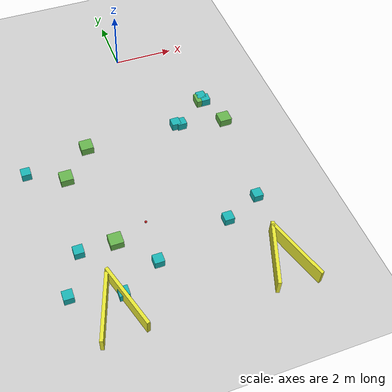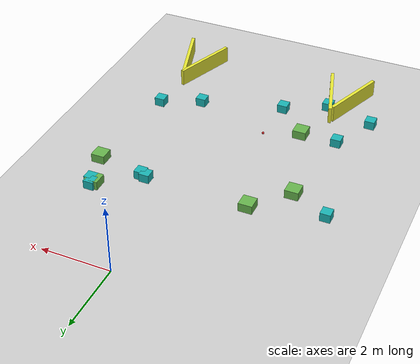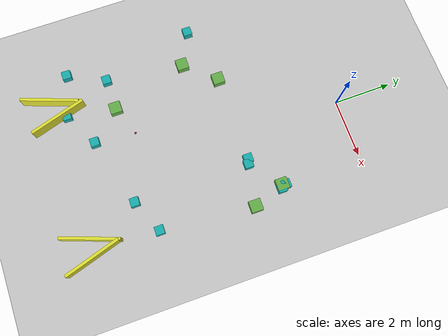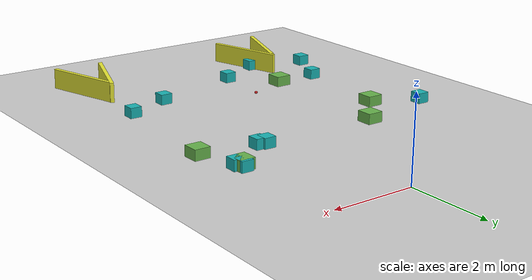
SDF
<sdf version="1.7">
 <world name="default">
  <model name="ground_plane">
   <static>1</static>
   <link name="link">
    <collision name="collision">
     <geometry><plane><normal>0 0 1</normal><size>100 100</size></plane></geometry>
     <surface><friction><ode><mu>100</mu><mu2>50</mu2></ode></friction></surface>
    </collision>
    <visual name="visual">
     <cast_shadows>0</cast_shadows>
     <geometry><plane><normal>0 0 1</normal><size>100 100</size></plane></geometry>
     <material>
      <script><uri>file://media/materials/scripts/gazebo.material</uri><name>Gazebo/Grey</name></script>
     </material>
    </visual>
   </link>
  </model>
  <model name="fl4sr_real_arena_8_target">
   <model name="target_ball_6">
    <link name="link">
     <pose>0 0 0.0375 0 -0 0</pose>
     <inertial>
      <mass>0.1467</mass>
      <inertia>
       <ixx>8.25187e-05</ixx>
       <ixy>0</ixy>
       <ixz>0</ixz>
       <iyy>8.25187e-05</iyy>
       <iyz>0</iyz>
       <izz>8.25187e-05</izz>
      </inertia>
     </inertial>
     <velocity_decay><linear>0</linear><angular>0.005</angular></velocity_decay>
     <visual name="visual">
      <geometry><sphere><radius>0.0375</radius></sphere></geometry>
      <material>
       <script><uri>file://media/materials/scripts/gazebo.material</uri><name>Gazebo/Red</name></script>
       <shader type="pixel"/>
      </material>
     </visual>
     <collision name="collision">
      <geometry><sphere><radius>0.0375</radius></sphere></geometry>
      <surface>
       <friction>
        <ode><mu>1</mu><mu2>1</mu2><fdir1>0 0 0</fdir1><slip1>0</slip1><slip2>0</slip2></ode>
        <torsional>
         <coefficient>1</coefficient>
         <patch_radius>0</patch_radius>
         <surface_radius>0.01</surface_radius>
         <use_patch_radius>0</use_patch_radius>
         <ode><slip>0</slip></ode>
        </torsional>
       </friction>
       <bounce><restitution_coefficient>0</restitution_coefficient><threshold>1e+06</threshold></bounce>
       <contact>
        <collide_without_contact>0</collide_without_contact>
        <collide_without_contact_bitmask>1</collide_without_contact_bitmask>
        <collide_bitmask>1</collide_bitmask>
        <ode>
         <soft_cfm>0</soft_cfm>
         <soft_erp>0.2</soft_erp>
         <kp>100000</kp>
         <kd>100</kd>
         <max_vel>100</max_vel>
         <min_depth>0.001</min_depth>
        </ode>
        <bullet>
         <split_impulse>1</split_impulse>
         <split_impulse_penetration_threshold>-0.01</split_impulse_penetration_threshold>
         <soft_cfm>0</soft_cfm>
         <soft_erp>0.2</soft_erp>
         <kp>100000</kp>
         <kd>100</kd>
        </bullet>
       </contact>
      </surface>
     </collision>
    </link>
    <static>0</static>
    <pose>-2.94744 -7.77192 0 0 -0 0</pose>
   </model>
   <static>0</static>
   <pose>1.69407 0.837481 0 0 -0 0</pose>
  </model>
  <model name="unit_box_0.3_heavy_clone_3">
   <link name="link">
    <inertial>
     <mass>100</mass>
     <inertia><ixx>1.5</ixx><ixy>0</ixy><ixz>0</ixz><iyy>1.5</iyy><iyz>0</iyz><izz>1.5</izz></inertia>
    </inertial>
    <visual name="visual">
     <geometry><box><size>0.3 0.3 0.5</size></box></geometry>
     <material>
      <script><name>Gazebo/Grey</name><uri>file://media/materials/scripts/gazebo.material</uri></script>
      <shader type="pixel"><normal_map>__default__</normal_map></shader>
      <ambient>0.1 0.7 0.7 1</ambient>
      <diffuse>0.7 0.7 0.7 1</diffuse>
      <specular>0.01 0.01 0.01 1</specular>
      <emissive>0 0 0 1</emissive>
     </material>
    </visual>
    <collision name="collision">
     <geometry><box><size>0.3 0.3 0.5</size></box></geometry>
     <surface>
      <friction>
       <ode><mu>1</mu><mu2>1</mu2><fdir1>0 0 0</fdir1><slip1>0</slip1><slip2>0</slip2></ode>
       <torsional>
        <coefficient>1</coefficient>
        <patch_radius>0</patch_radius>
        <surface_radius>0</surface_radius>
        <use_patch_radius>1</use_patch_radius>
        <ode><slip>0</slip></ode>
       </torsional>
      </friction>
      <bounce><restitution_coefficient>0</restitution_coefficient><threshold>1e+06</threshold></bounce>
      <contact>
       <collide_without_contact>0</collide_without_contact>
       <collide_without_contact_bitmask>1</collide_without_contact_bitmask>
       <collide_bitmask>1</collide_bitmask>
       <ode>
        <soft_cfm>0</soft_cfm>
        <soft_erp>0.2</soft_erp>
        <kp>1e+13</kp>
        <kd>1</kd>
        <max_vel>0.01</max_vel>
        <min_depth>0</min_depth>
       </ode>
       <bullet>
        <split_impulse>1</split_impulse>
        <split_impulse_penetration_threshold>-0.01</split_impulse_penetration_threshold>
        <soft_cfm>0</soft_cfm>
        <soft_erp>0.2</soft_erp>
        <kp>1e+13</kp>
        <kd>1</kd>
       </bullet>
      </contact>
     </surface>
    </collision>
   </link>
   <static>1</static>
   <pose>2.13984 -2.73394 0 0 -0 0</pose>
  </model>
  <model name="unit_box_0.3_heavy_clone_4">
   <link name="link">
    <inertial>
     <mass>100</mass>
     <inertia><ixx>1.5</ixx><ixy>0</ixy><ixz>0</ixz><iyy>1.5</iyy><iyz>0</iyz><izz>1.5</izz></inertia>
    </inertial>
    <visual name="visual">
     <geometry><box><size>0.3 0.3 0.5</size></box></geometry>
     <material>
      <script><name>Gazebo/Grey</name><uri>file://media/materials/scripts/gazebo.material</uri></script>
      <shader type="pixel"><normal_map>__default__</normal_map></shader>
      <ambient>0.1 0.7 0.7 1</ambient>
      <diffuse>0.7 0.7 0.7 1</diffuse>
      <specular>0.01 0.01 0.01 1</specular>
      <emissive>0 0 0 1</emissive>
     </material>
    </visual>
    <collision name="collision">
     <geometry><box><size>0.3 0.3 0.5</size></box></geometry>
     <surface>
      <friction>
       <ode><mu>1</mu><mu2>1</mu2><fdir1>0 0 0</fdir1><slip1>0</slip1><slip2>0</slip2></ode>
       <torsional>
        <coefficient>1</coefficient>
        <patch_radius>0</patch_radius>
        <surface_radius>0</surface_radius>
        <use_patch_radius>1</use_patch_radius>
        <ode><slip>0</slip></ode>
       </torsional>
      </friction>
      <bounce><restitution_coefficient>0</restitution_coefficient><threshold>1e+06</threshold></bounce>
      <contact>
       <collide_without_contact>0</collide_without_contact>
       <collide_without_contact_bitmask>1</collide_without_contact_bitmask>
       <collide_bitmask>1</collide_bitmask>
       <ode>
        <soft_cfm>0</soft_cfm>
        <soft_erp>0.2</soft_erp>
        <kp>1e+13</kp>
        <kd>1</kd>
        <max_vel>0.01</max_vel>
        <min_depth>0</min_depth>
       </ode>
       <bullet>
        <split_impulse>1</split_impulse>
        <split_impulse_penetration_threshold>-0.01</split_impulse_penetration_threshold>
        <soft_cfm>0</soft_cfm>
        <soft_erp>0.2</soft_erp>
        <kp>1e+13</kp>
        <kd>1</kd>
       </bullet>
      </contact>
     </surface>
    </collision>
   </link>
   <static>1</static>
   <pose>2.2171 -2.90142 0 0 -0 0</pose>
  </model>
  <model name="unit_box_0.3_heavy_clone_5">
   <link name="link">
    <inertial>
     <mass>100</mass>
     <inertia><ixx>1.5</ixx><ixy>0</ixy><ixz>0</ixz><iyy>1.5</iyy><iyz>0</iyz><izz>1.5</izz></inertia>
    </inertial>
    <visual name="visual">
     <geometry><box><size>0.3 0.3 0.5</size></box></geometry>
     <material>
      <script><name>Gazebo/Grey</name><uri>file://media/materials/scripts/gazebo.material</uri></script>
      <shader type="pixel"><normal_map>__default__</normal_map></shader>
      <ambient>0.1 0.7 0.7 1</ambient>
      <diffuse>0.7 0.7 0.7 1</diffuse>
      <specular>0.01 0.01 0.01 1</specular>
      <emissive>0 0 0 1</emissive>
     </material>
    </visual>
    <collision name="collision">
     <geometry><box><size>0.3 0.3 0.5</size></box></geometry>
     <surface>
      <friction>
       <ode><mu>1</mu><mu2>1</mu2><fdir1>0 0 0</fdir1><slip1>0</slip1><slip2>0</slip2></ode>
       <torsional>
        <coefficient>1</coefficient>
        <patch_radius>0</patch_radius>
        <surface_radius>0</surface_radius>
        <use_patch_radius>1</use_patch_radius>
        <ode><slip>0</slip></ode>
       </torsional>
      </friction>
      <bounce><restitution_coefficient>0</restitution_coefficient><threshold>1e+06</threshold></bounce>
      <contact>
       <collide_without_contact>0</collide_without_contact>
       <collide_without_contact_bitmask>1</collide_without_contact_bitmask>
       <collide_bitmask>1</collide_bitmask>
       <ode>
        <soft_cfm>0</soft_cfm>
        <soft_erp>0.2</soft_erp>
        <kp>1e+13</kp>
        <kd>1</kd>
        <max_vel>0.01</max_vel>
        <min_depth>0</min_depth>
       </ode>
       <bullet>
        <split_impulse>1</split_impulse>
        <split_impulse_penetration_threshold>-0.01</split_impulse_penetration_threshold>
        <soft_cfm>0</soft_cfm>
        <soft_erp>0.2</soft_erp>
        <kp>1e+13</kp>
        <kd>1</kd>
       </bullet>
      </contact>
     </surface>
    </collision>
   </link>
   <static>1</static>
   <pose>1.07636 -3.67231 0 0 -0 0</pose>
  </model>
  <model name="unit_box_0.3_heavy_clone_6">
   <link name="link">
    <inertial>
     <mass>100</mass>
     <inertia><ixx>1.5</ixx><ixy>0</ixy><ixz>0</ixz><iyy>1.5</iyy><iyz>0</iyz><izz>1.5</izz></inertia>
    </inertial>
    <visual name="visual">
     <geometry><box><size>0.3 0.3 0.5</size></box></geometry>
     <material>
      <script><name>Gazebo/Grey</name><uri>file://media/materials/scripts/gazebo.material</uri></script>
      <shader type="pixel"><normal_map>__default__</normal_map></shader>
      <ambient>0.1 0.7 0.7 1</ambient>
      <diffuse>0.7 0.7 0.7 1</diffuse>
      <specular>0.01 0.01 0.01 1</specular>
      <emissive>0 0 0 1</emissive>
     </material>
    </visual>
    <collision name="collision">
     <geometry><box><size>0.3 0.3 0.5</size></box></geometry>
     <surface>
      <friction>
       <ode><mu>1</mu><mu2>1</mu2><fdir1>0 0 0</fdir1><slip1>0</slip1><slip2>0</slip2></ode>
       <torsional>
        <coefficient>1</coefficient>
        <patch_radius>0</patch_radius>
        <surface_radius>0</surface_radius>
        <use_patch_radius>1</use_patch_radius>
        <ode><slip>0</slip></ode>
       </torsional>
      </friction>
      <bounce><restitution_coefficient>0</restitution_coefficient><threshold>1e+06</threshold></bounce>
      <contact>
       <collide_without_contact>0</collide_without_contact>
       <collide_without_contact_bitmask>1</collide_without_contact_bitmask>
       <collide_bitmask>1</collide_bitmask>
       <ode>
        <soft_cfm>0</soft_cfm>
        <soft_erp>0.2</soft_erp>
        <kp>1e+13</kp>
        <kd>1</kd>
        <max_vel>0.01</max_vel>
        <min_depth>0</min_depth>
       </ode>
       <bullet>
        <split_impulse>1</split_impulse>
        <split_impulse_penetration_threshold>-0.01</split_impulse_penetration_threshold>
        <soft_cfm>0</soft_cfm>
        <soft_erp>0.2</soft_erp>
        <kp>1e+13</kp>
        <kd>1</kd>
       </bullet>
      </contact>
     </surface>
    </collision>
   </link>
   <static>1</static>
   <pose>0.896545 -3.61717 0 0 -0 0</pose>
  </model>
  <model name="unit_box_0.3_heavy_clone_9">
   <link name="link">
    <inertial>
     <mass>100</mass>
     <inertia><ixx>1.5</ixx><ixy>0</ixy><ixz>0</ixz><iyy>1.5</iyy><iyz>0</iyz><izz>1.5</izz></inertia>
    </inertial>
    <visual name="visual">
     <geometry><box><size>0.3 0.3 0.5</size></box></geometry>
     <material>
      <script><name>Gazebo/Grey</name><uri>file://media/materials/scripts/gazebo.material</uri></script>
      <shader type="pixel"><normal_map>__default__</normal_map></shader>
      <ambient>0.1 0.7 0.7 1</ambient>
      <diffuse>0.7 0.7 0.7 1</diffuse>
      <specular>0.01 0.01 0.01 1</specular>
      <emissive>0 0 0 1</emissive>
     </material>
    </visual>
    <collision name="collision">
     <geometry><box><size>0.3 0.3 0.5</size></box></geometry>
     <surface>
      <friction>
       <ode><mu>1</mu><mu2>1</mu2><fdir1>0 0 0</fdir1><slip1>0</slip1><slip2>0</slip2></ode>
       <torsional>
        <coefficient>1</coefficient>
        <patch_radius>0</patch_radius>
        <surface_radius>0</surface_radius>
        <use_patch_radius>1</use_patch_radius>
        <ode><slip>0</slip></ode>
       </torsional>
      </friction>
      <bounce><restitution_coefficient>0</restitution_coefficient><threshold>1e+06</threshold></bounce>
      <contact>
       <collide_without_contact>0</collide_without_contact>
       <collide_without_contact_bitmask>1</collide_without_contact_bitmask>
       <collide_bitmask>1</collide_bitmask>
       <ode>
        <soft_cfm>0</soft_cfm>
        <soft_erp>0.2</soft_erp>
        <kp>1e+13</kp>
        <kd>1</kd>
        <max_vel>0.01</max_vel>
        <min_depth>0</min_depth>
       </ode>
       <bullet>
        <split_impulse>1</split_impulse>
        <split_impulse_penetration_threshold>-0.01</split_impulse_penetration_threshold>
        <soft_cfm>0</soft_cfm>
        <soft_erp>0.2</soft_erp>
        <kp>1e+13</kp>
        <kd>1</kd>
       </bullet>
      </contact>
     </surface>
    </collision>
   </link>
   <static>1</static>
   <pose>1.05115 -7.66638 0 0 -0 0</pose>
  </model>
  <model name="unit_box_0.3_heavy_clone_10">
   <link name="link">
    <inertial>
     <mass>100</mass>
     <inertia><ixx>1.5</ixx><ixy>0</ixy><ixz>0</ixz><iyy>1.5</iyy><iyz>0</iyz><izz>1.5</izz></inertia>
    </inertial>
    <visual name="visual">
     <geometry><box><size>0.3 0.3 0.5</size></box></geometry>
     <material>
      <script><name>Gazebo/Grey</name><uri>file://media/materials/scripts/gazebo.material</uri></script>
      <shader type="pixel"><normal_map>__default__</normal_map></shader>
      <ambient>0.1 0.7 0.7 1</ambient>
      <diffuse>0.7 0.7 0.7 1</diffuse>
      <specular>0.01 0.01 0.01 1</specular>
      <emissive>0 0 0 1</emissive>
     </material>
    </visual>
    <collision name="collision">
     <geometry><box><size>0.3 0.3 0.5</size></box></geometry>
     <surface>
      <friction>
       <ode><mu>1</mu><mu2>1</mu2><fdir1>0 0 0</fdir1><slip1>0</slip1><slip2>0</slip2></ode>
       <torsional>
        <coefficient>1</coefficient>
        <patch_radius>0</patch_radius>
        <surface_radius>0</surface_radius>
        <use_patch_radius>1</use_patch_radius>
        <ode><slip>0</slip></ode>
       </torsional>
      </friction>
      <bounce><restitution_coefficient>0</restitution_coefficient><threshold>1e+06</threshold></bounce>
      <contact>
       <collide_without_contact>0</collide_without_contact>
       <collide_without_contact_bitmask>1</collide_without_contact_bitmask>
       <collide_bitmask>1</collide_bitmask>
       <ode>
        <soft_cfm>0</soft_cfm>
        <soft_erp>0.2</soft_erp>
        <kp>1e+13</kp>
        <kd>1</kd>
        <max_vel>0.01</max_vel>
        <min_depth>0</min_depth>
       </ode>
       <bullet>
        <split_impulse>1</split_impulse>
        <split_impulse_penetration_threshold>-0.01</split_impulse_penetration_threshold>
        <soft_cfm>0</soft_cfm>
        <soft_erp>0.2</soft_erp>
        <kp>1e+13</kp>
        <kd>1</kd>
       </bullet>
      </contact>
     </surface>
    </collision>
   </link>
   <static>1</static>
   <pose>2.20551 -7.17477 0 0 -0 0</pose>
  </model>
  <model name="wooden_wall_2_heavy">
   <link name="link_1">
    <inertial>
     <mass>100</mass>
     <inertia><ixx>8.41667</ixx><ixy>0</ixy><ixz>0</ixz><iyy>41.6667</iyy><iyz>0</iyz><izz>33.4167</izz></inertia>
    </inertial>
    <visual name="visual">
     <geometry><box><size>2 0.1 1</size></box></geometry>
     <material>
      <lighting>1</lighting>
      <script><uri>file://media/materials/scripts/gazebo.material</uri><name>Gazebo/Grey</name></script>
      <shader type="pixel"><normal_map>__default__</normal_map></shader>
      <ambient>0.9 0.9 0.2 1</ambient>
      <diffuse>0.7 0.7 0.7 1</diffuse>
      <specular>0.01 0.01 0.01 1</specular>
      <emissive>0 0 0 1</emissive>
     </material>
    </visual>
    <collision name="collision">
     <geometry><box><size>2 0.1 1</size></box></geometry>
     <surface>
      <friction>
       <ode><mu>1</mu><mu2>1</mu2><fdir1>0 0 0</fdir1><slip1>0</slip1><slip2>0</slip2></ode>
       <torsional>
        <coefficient>1</coefficient>
        <patch_radius>0</patch_radius>
        <surface_radius>0</surface_radius>
        <use_patch_radius>1</use_patch_radius>
        <ode><slip>0</slip></ode>
       </torsional>
      </friction>
      <bounce><restitution_coefficient>0</restitution_coefficient><threshold>1e+06</threshold></bounce>
      <contact>
       <collide_without_contact>0</collide_without_contact>
       <collide_without_contact_bitmask>1</collide_without_contact_bitmask>
       <collide_bitmask>1</collide_bitmask>
       <ode>
        <soft_cfm>0</soft_cfm>
        <soft_erp>0.2</soft_erp>
        <kp>1e+13</kp>
        <kd>1</kd>
        <max_vel>0.01</max_vel>
        <min_depth>0</min_depth>
       </ode>
       <bullet>
        <split_impulse>1</split_impulse>
        <split_impulse_penetration_threshold>-0.01</split_impulse_penetration_threshold>
        <soft_cfm>0</soft_cfm>
        <soft_erp>0.2</soft_erp>
        <kp>1e+13</kp>
        <kd>1</kd>
       </bullet>
      </contact>
     </surface>
    </collision>
   </link>
   <static>1</static>
   <allow_auto_disable>0</allow_auto_disable>
   <pose>1.74439 -9.35521 0 0 -0 1.22167</pose>
  </model>
  <model name="wooden_wall_2_heavy_clone">
   <link name="link_1">
    <inertial>
     <mass>100</mass>
     <inertia><ixx>8.41667</ixx><ixy>0</ixy><ixz>0</ixz><iyy>41.6667</iyy><iyz>0</iyz><izz>33.4167</izz></inertia>
    </inertial>
    <visual name="visual">
     <geometry><box><size>2 0.1 1</size></box></geometry>
     <material>
      <lighting>1</lighting>
      <script><uri>file://media/materials/scripts/gazebo.material</uri><name>Gazebo/Grey</name></script>
      <shader type="pixel"><normal_map>__default__</normal_map></shader>
      <ambient>0.9 0.9 0.2 1</ambient>
      <diffuse>0.7 0.7 0.7 1</diffuse>
      <specular>0.01 0.01 0.01 1</specular>
      <emissive>0 0 0 1</emissive>
     </material>
    </visual>
    <collision name="collision">
     <geometry><box><size>2 0.1 1</size></box></geometry>
     <surface>
      <friction>
       <ode><mu>1</mu><mu2>1</mu2><fdir1>0 0 0</fdir1><slip1>0</slip1><slip2>0</slip2></ode>
       <torsional>
        <coefficient>1</coefficient>
        <patch_radius>0</patch_radius>
        <surface_radius>0</surface_radius>
        <use_patch_radius>1</use_patch_radius>
        <ode><slip>0</slip></ode>
       </torsional>
      </friction>
      <bounce><restitution_coefficient>0</restitution_coefficient><threshold>1e+06</threshold></bounce>
      <contact>
       <collide_without_contact>0</collide_without_contact>
       <collide_without_contact_bitmask>1</collide_without_contact_bitmask>
       <collide_bitmask>1</collide_bitmask>
       <ode>
        <soft_cfm>0</soft_cfm>
        <soft_erp>0.2</soft_erp>
        <kp>1e+13</kp>
        <kd>1</kd>
        <max_vel>0.01</max_vel>
        <min_depth>0</min_depth>
       </ode>
       <bullet>
        <split_impulse>1</split_impulse>
        <split_impulse_penetration_threshold>-0.01</split_impulse_penetration_threshold>
        <soft_cfm>0</soft_cfm>
        <soft_erp>0.2</soft_erp>
        <kp>1e+13</kp>
        <kd>1</kd>
       </bullet>
      </contact>
     </surface>
    </collision>
   </link>
   <static>1</static>
   <allow_auto_disable>0</allow_auto_disable>
   <pose>2.34834 -9.44014 0 0 -0 1.86218</pose>
  </model>
  <model name="unit_box_0.4_heavy_clone">
   <link name="link">
    <inertial>
     <mass>100</mass>
     <inertia><ixx>1.5</ixx><ixy>0</ixy><ixz>0</ixz><iyy>1.5</iyy><iyz>0</iyz><izz>1.5</izz></inertia>
    </inertial>
    <visual name="visual">
     <geometry><box><size>0.4 0.4 0.5</size></box></geometry>
     <material>
      <script><name>Gazebo/Grey</name><uri>file://media/materials/scripts/gazebo.material</uri></script>
      <shader type="pixel"><normal_map>__default__</normal_map></shader>
      <ambient>0.4 0.7 0.3 1</ambient>
      <diffuse>0.7 0.7 0.7 1</diffuse>
      <specular>0.01 0.01 0.01 1</specular>
      <emissive>0 0 0 1</emissive>
     </material>
    </visual>
    <collision name="collision">
     <geometry><box><size>0.4 0.4 0.5</size></box></geometry>
     <surface>
      <friction>
       <ode><mu>1</mu><mu2>1</mu2><fdir1>0 0 0</fdir1><slip1>0</slip1><slip2>0</slip2></ode>
       <torsional>
        <coefficient>1</coefficient>
        <patch_radius>0</patch_radius>
        <surface_radius>0</surface_radius>
        <use_patch_radius>1</use_patch_radius>
        <ode><slip>0</slip></ode>
       </torsional>
      </friction>
      <bounce><restitution_coefficient>0</restitution_coefficient><threshold>1e+06</threshold></bounce>
      <contact>
       <collide_without_contact>0</collide_without_contact>
       <collide_without_contact_bitmask>1</collide_without_contact_bitmask>
       <collide_bitmask>1</collide_bitmask>
       <ode>
        <soft_cfm>0</soft_cfm>
        <soft_erp>0.2</soft_erp>
        <kp>1e+13</kp>
        <kd>1</kd>
        <max_vel>0.01</max_vel>
        <min_depth>0</min_depth>
       </ode>
       <bullet>
        <split_impulse>1</split_impulse>
        <split_impulse_penetration_threshold>-0.01</split_impulse_penetration_threshold>
        <soft_cfm>0</soft_cfm>
        <soft_erp>0.2</soft_erp>
        <kp>1e+13</kp>
        <kd>1</kd>
       </bullet>
      </contact>
     </surface>
    </collision>
   </link>
   <static>1</static>
   <pose>2.09793 -2.85005 0 0 -0 0</pose>
  </model>
  <model name="unit_box_0.4_heavy_clone_0">
   <link name="link">
    <inertial>
     <mass>100</mass>
     <inertia><ixx>1.5</ixx><ixy>0</ixy><ixz>0</ixz><iyy>1.5</iyy><iyz>0</iyz><izz>1.5</izz></inertia>
    </inertial>
    <visual name="visual">
     <geometry><box><size>0.4 0.4 0.5</size></box></geometry>
     <material>
      <script><name>Gazebo/Grey</name><uri>file://media/materials/scripts/gazebo.material</uri></script>
      <shader type="pixel"><normal_map>__default__</normal_map></shader>
      <ambient>0.4 0.7 0.3 1</ambient>
      <diffuse>0.7 0.7 0.7 1</diffuse>
      <specular>0.01 0.01 0.01 1</specular>
      <emissive>0 0 0 1</emissive>
     </material>
    </visual>
    <collision name="collision">
     <geometry><box><size>0.4 0.4 0.5</size></box></geometry>
     <surface>
      <friction>
       <ode><mu>1</mu><mu2>1</mu2><fdir1>0 0 0</fdir1><slip1>0</slip1><slip2>0</slip2></ode>
       <torsional>
        <coefficient>1</coefficient>
        <patch_radius>0</patch_radius>
        <surface_radius>0</surface_radius>
        <use_patch_radius>1</use_patch_radius>
        <ode><slip>0</slip></ode>
       </torsional>
      </friction>
      <bounce><restitution_coefficient>0</restitution_coefficient><threshold>1e+06</threshold></bounce>
      <contact>
       <collide_without_contact>0</collide_without_contact>
       <collide_without_contact_bitmask>1</collide_without_contact_bitmask>
       <collide_bitmask>1</collide_bitmask>
       <ode>
        <soft_cfm>0</soft_cfm>
        <soft_erp>0.2</soft_erp>
        <kp>1e+13</kp>
        <kd>1</kd>
        <max_vel>0.01</max_vel>
        <min_depth>0</min_depth>
       </ode>
       <bullet>
        <split_impulse>1</split_impulse>
        <split_impulse_penetration_threshold>-0.01</split_impulse_penetration_threshold>
        <soft_cfm>0</soft_cfm>
        <soft_erp>0.2</soft_erp>
        <kp>1e+13</kp>
        <kd>1</kd>
       </bullet>
      </contact>
     </surface>
    </collision>
   </link>
   <static>1</static>
   <pose>2.49286 -3.93536 0 0 -0 0</pose>
  </model>
  <model name="wooden_wall_2_heavy_clone_0">
   <link name="link_1">
    <inertial>
     <mass>100</mass>
     <inertia><ixx>8.41667</ixx><ixy>0</ixy><ixz>0</ixz><iyy>41.6667</iyy><iyz>0</iyz><izz>33.4167</izz></inertia>
    </inertial>
    <visual name="visual">
     <geometry><box><size>2 0.1 1</size></box></geometry>
     <material>
      <lighting>1</lighting>
      <script><uri>file://media/materials/scripts/gazebo.material</uri><name>Gazebo/Grey</name></script>
      <shader type="pixel"><normal_map>__default__</normal_map></shader>
      <ambient>0.9 0.9 0.2 1</ambient>
      <diffuse>0.7 0.7 0.7 1</diffuse>
      <specular>0.01 0.01 0.01 1</specular>
      <emissive>0 0 0 1</emissive>
     </material>
    </visual>
    <collision name="collision">
     <geometry><box><size>2 0.1 1</size></box></geometry>
     <surface>
      <friction>
       <ode><mu>1</mu><mu2>1</mu2><fdir1>0 0 0</fdir1><slip1>0</slip1><slip2>0</slip2></ode>
       <torsional>
        <coefficient>1</coefficient>
        <patch_radius>0</patch_radius>
        <surface_radius>0</surface_radius>
        <use_patch_radius>1</use_patch_radius>
        <ode><slip>0</slip></ode>
       </torsional>
      </friction>
      <bounce><restitution_coefficient>0</restitution_coefficient><threshold>1e+06</threshold></bounce>
      <contact>
       <collide_without_contact>0</collide_without_contact>
       <collide_without_contact_bitmask>1</collide_without_contact_bitmask>
       <collide_bitmask>1</collide_bitmask>
       <ode>
        <soft_cfm>0</soft_cfm>
        <soft_erp>0.2</soft_erp>
        <kp>1e+13</kp>
        <kd>1</kd>
        <max_vel>0.01</max_vel>
        <min_depth>0</min_depth>
       </ode>
       <bullet>
        <split_impulse>1</split_impulse>
        <split_impulse_penetration_threshold>-0.01</split_impulse_penetration_threshold>
        <soft_cfm>0</soft_cfm>
        <soft_erp>0.2</soft_erp>
        <kp>1e+13</kp>
        <kd>1</kd>
       </bullet>
      </contact>
     </surface>
    </collision>
   </link>
   <static>1</static>
   <allow_auto_disable>0</allow_auto_disable>
   <pose>-3.21135 -9.34915 0 0 -0 1.22167</pose>
  </model>
  <model name="wooden_wall_2_heavy_clone_2">
   <link name="link_1">
    <inertial>
     <mass>100</mass>
     <inertia><ixx>8.41667</ixx><ixy>0</ixy><ixz>0</ixz><iyy>41.6667</iyy><iyz>0</iyz><izz>33.4167</izz></inertia>
    </inertial>
    <visual name="visual">
     <geometry><box><size>2 0.1 1</size></box></geometry>
     <material>
      <lighting>1</lighting>
      <script><uri>file://media/materials/scripts/gazebo.material</uri><name>Gazebo/Grey</name></script>
      <shader type="pixel"><normal_map>__default__</normal_map></shader>
      <ambient>0.9 0.9 0.2 1</ambient>
      <diffuse>0.7 0.7 0.7 1</diffuse>
      <specular>0.01 0.01 0.01 1</specular>
      <emissive>0 0 0 1</emissive>
     </material>
    </visual>
    <collision name="collision">
     <geometry><box><size>2 0.1 1</size></box></geometry>
     <surface>
      <friction>
       <ode><mu>1</mu><mu2>1</mu2><fdir1>0 0 0</fdir1><slip1>0</slip1><slip2>0</slip2></ode>
       <torsional>
        <coefficient>1</coefficient>
        <patch_radius>0</patch_radius>
        <surface_radius>0</surface_radius>
        <use_patch_radius>1</use_patch_radius>
        <ode><slip>0</slip></ode>
       </torsional>
      </friction>
      <bounce><restitution_coefficient>0</restitution_coefficient><threshold>1e+06</threshold></bounce>
      <contact>
       <collide_without_contact>0</collide_without_contact>
       <collide_without_contact_bitmask>1</collide_without_contact_bitmask>
       <collide_bitmask>1</collide_bitmask>
       <ode>
        <soft_cfm>0</soft_cfm>
        <soft_erp>0.2</soft_erp>
        <kp>1e+13</kp>
        <kd>1</kd>
        <max_vel>0.01</max_vel>
        <min_depth>0</min_depth>
       </ode>
       <bullet>
        <split_impulse>1</split_impulse>
        <split_impulse_penetration_threshold>-0.01</split_impulse_penetration_threshold>
        <soft_cfm>0</soft_cfm>
        <soft_erp>0.2</soft_erp>
        <kp>1e+13</kp>
        <kd>1</kd>
       </bullet>
      </contact>
     </surface>
    </collision>
   </link>
   <static>1</static>
   <allow_auto_disable>0</allow_auto_disable>
   <pose>-2.55143 -9.2433 0 0 -0 1.86135</pose>
  </model>
  <model name="unit_box_0.3_heavy_clone_clone_3_clone">
   <link name="link">
    <inertial>
     <mass>100</mass>
     <inertia><ixx>1.5</ixx><ixy>0</ixy><ixz>0</ixz><iyy>1.5</iyy><iyz>0</iyz><izz>1.5</izz></inertia>
    </inertial>
    <visual name="visual">
     <geometry><box><size>0.3 0.3 0.5</size></box></geometry>
     <material>
      <script><name>Gazebo/Grey</name><uri>file://media/materials/scripts/gazebo.material</uri></script>
      <shader type="pixel"><normal_map>__default__</normal_map></shader>
      <ambient>0.1 0.7 0.7 1</ambient>
      <diffuse>0.7 0.7 0.7 1</diffuse>
      <specular>0.01 0.01 0.01 1</specular>
      <emissive>0 0 0 1</emissive>
     </material>
    </visual>
    <collision name="collision">
     <geometry><box><size>0.3 0.3 0.5</size></box></geometry>
     <surface>
      <friction>
       <ode><mu>1</mu><mu2>1</mu2><fdir1>0 0 0</fdir1><slip1>0</slip1><slip2>0</slip2></ode>
       <torsional>
        <coefficient>1</coefficient>
        <patch_radius>0</patch_radius>
        <surface_radius>0</surface_radius>
        <use_patch_radius>1</use_patch_radius>
        <ode><slip>0</slip></ode>
       </torsional>
      </friction>
      <bounce><restitution_coefficient>0</restitution_coefficient><threshold>1e+06</threshold></bounce>
      <contact>
       <collide_without_contact>0</collide_without_contact>
       <collide_without_contact_bitmask>1</collide_without_contact_bitmask>
       <collide_bitmask>1</collide_bitmask>
       <ode>
        <soft_cfm>0</soft_cfm>
        <soft_erp>0.2</soft_erp>
        <kp>1e+13</kp>
        <kd>1</kd>
        <max_vel>0.01</max_vel>
        <min_depth>0</min_depth>
       </ode>
       <bullet>
        <split_impulse>1</split_impulse>
        <split_impulse_penetration_threshold>-0.01</split_impulse_penetration_threshold>
        <soft_cfm>0</soft_cfm>
        <soft_erp>0.2</soft_erp>
        <kp>1e+13</kp>
        <kd>1</kd>
       </bullet>
      </contact>
     </surface>
    </collision>
   </link>
   <static>1</static>
   <pose>-4.20341 -4.06777 0 0 -0 0</pose>
  </model>
  <model name="unit_box_0.4_heavy_clone_3">
   <link name="link">
    <inertial>
     <mass>100</mass>
     <inertia><ixx>1.5</ixx><ixy>0</ixy><ixz>0</ixz><iyy>1.5</iyy><iyz>0</iyz><izz>1.5</izz></inertia>
    </inertial>
    <visual name="visual">
     <geometry><box><size>0.4 0.4 0.5</size></box></geometry>
     <material>
      <script><name>Gazebo/Grey</name><uri>file://media/materials/scripts/gazebo.material</uri></script>
      <shader type="pixel"><normal_map>__default__</normal_map></shader>
      <ambient>0.4 0.7 0.3 1</ambient>
      <diffuse>0.7 0.7 0.7 1</diffuse>
      <specular>0.01 0.01 0.01 1</specular>
      <emissive>0 0 0 1</emissive>
     </material>
    </visual>
    <collision name="collision">
     <geometry><box><size>0.4 0.4 0.5</size></box></geometry>
     <surface>
      <friction>
       <ode><mu>1</mu><mu2>1</mu2><fdir1>0 0 0</fdir1><slip1>0</slip1><slip2>0</slip2></ode>
       <torsional>
        <coefficient>1</coefficient>
        <patch_radius>0</patch_radius>
        <surface_radius>0</surface_radius>
        <use_patch_radius>1</use_patch_radius>
        <ode><slip>0</slip></ode>
       </torsional>
      </friction>
      <bounce><restitution_coefficient>0</restitution_coefficient><threshold>1e+06</threshold></bounce>
      <contact>
       <collide_without_contact>0</collide_without_contact>
       <collide_without_contact_bitmask>1</collide_without_contact_bitmask>
       <collide_bitmask>1</collide_bitmask>
       <ode>
        <soft_cfm>0</soft_cfm>
        <soft_erp>0.2</soft_erp>
        <kp>1e+13</kp>
        <kd>1</kd>
        <max_vel>0.01</max_vel>
        <min_depth>0</min_depth>
       </ode>
       <bullet>
        <split_impulse>1</split_impulse>
        <split_impulse_penetration_threshold>-0.01</split_impulse_penetration_threshold>
        <soft_cfm>0</soft_cfm>
        <soft_erp>0.2</soft_erp>
        <kp>1e+13</kp>
        <kd>1</kd>
       </bullet>
      </contact>
     </surface>
    </collision>
   </link>
   <static>1</static>
   <pose>-3.06794 -4.63547 0 0 -0 0</pose>
  </model>
  <model name="unit_box_0.4_heavy_clone_4">
   <link name="link">
    <inertial>
     <mass>100</mass>
     <inertia><ixx>1.5</ixx><ixy>0</ixy><ixz>0</ixz><iyy>1.5</iyy><iyz>0</iyz><izz>1.5</izz></inertia>
    </inertial>
    <visual name="visual">
     <geometry><box><size>0.4 0.4 0.5</size></box></geometry>
     <material>
      <script><name>Gazebo/Grey</name><uri>file://media/materials/scripts/gazebo.material</uri></script>
      <shader type="pixel"><normal_map>__default__</normal_map></shader>
      <ambient>0.4 0.7 0.3 1</ambient>
      <diffuse>0.7 0.7 0.7 1</diffuse>
      <specular>0.01 0.01 0.01 1</specular>
      <emissive>0 0 0 1</emissive>
     </material>
    </visual>
    <collision name="collision">
     <geometry><box><size>0.4 0.4 0.5</size></box></geometry>
     <surface>
      <friction>
       <ode><mu>1</mu><mu2>1</mu2><fdir1>0 0 0</fdir1><slip1>0</slip1><slip2>0</slip2></ode>
       <torsional>
        <coefficient>1</coefficient>
        <patch_radius>0</patch_radius>
        <surface_radius>0</surface_radius>
        <use_patch_radius>1</use_patch_radius>
        <ode><slip>0</slip></ode>
       </torsional>
      </friction>
      <bounce><restitution_coefficient>0</restitution_coefficient><threshold>1e+06</threshold></bounce>
      <contact>
       <collide_without_contact>0</collide_without_contact>
       <collide_without_contact_bitmask>1</collide_without_contact_bitmask>
       <collide_bitmask>1</collide_bitmask>
       <ode>
        <soft_cfm>0</soft_cfm>
        <soft_erp>0.2</soft_erp>
        <kp>1e+13</kp>
        <kd>1</kd>
        <max_vel>0.01</max_vel>
        <min_depth>0</min_depth>
       </ode>
       <bullet>
        <split_impulse>1</split_impulse>
        <split_impulse_penetration_threshold>-0.01</split_impulse_penetration_threshold>
        <soft_cfm>0</soft_cfm>
        <soft_erp>0.2</soft_erp>
        <kp>1e+13</kp>
        <kd>1</kd>
       </bullet>
      </contact>
     </surface>
    </collision>
   </link>
   <static>1</static>
   <pose>-2.14782 -3.61747 0 0 -0 0</pose>
  </model>
  <model name="unit_box_0.4_heavy_clone_5">
   <link name="link">
    <inertial>
     <mass>100</mass>
     <inertia><ixx>1.5</ixx><ixy>0</ixy><ixz>0</ixz><iyy>1.5</iyy><iyz>0</iyz><izz>1.5</izz></inertia>
    </inertial>
    <visual name="visual">
     <geometry><box><size>0.4 0.4 0.5</size></box></geometry>
     <material>
      <script><name>Gazebo/Grey</name><uri>file://media/materials/scripts/gazebo.material</uri></script>
      <shader type="pixel"><normal_map>__default__</normal_map></shader>
      <ambient>0.4 0.7 0.3 1</ambient>
      <diffuse>0.7 0.7 0.7 1</diffuse>
      <specular>0.01 0.01 0.01 1</specular>
      <emissive>0 0 0 1</emissive>
     </material>
    </visual>
    <collision name="collision">
     <geometry><box><size>0.4 0.4 0.5</size></box></geometry>
     <surface>
      <friction>
       <ode><mu>1</mu><mu2>1</mu2><fdir1>0 0 0</fdir1><slip1>0</slip1><slip2>0</slip2></ode>
       <torsional>
        <coefficient>1</coefficient>
        <patch_radius>0</patch_radius>
        <surface_radius>0</surface_radius>
        <use_patch_radius>1</use_patch_radius>
        <ode><slip>0</slip></ode>
       </torsional>
      </friction>
      <bounce><restitution_coefficient>0</restitution_coefficient><threshold>1e+06</threshold></bounce>
      <contact>
       <collide_without_contact>0</collide_without_contact>
       <collide_without_contact_bitmask>1</collide_without_contact_bitmask>
       <collide_bitmask>1</collide_bitmask>
       <ode>
        <soft_cfm>0</soft_cfm>
        <soft_erp>0.2</soft_erp>
        <kp>1e+13</kp>
        <kd>1</kd>
        <max_vel>0.01</max_vel>
        <min_depth>0</min_depth>
       </ode>
       <bullet>
        <split_impulse>1</split_impulse>
        <split_impulse_penetration_threshold>-0.01</split_impulse_penetration_threshold>
        <soft_cfm>0</soft_cfm>
        <soft_erp>0.2</soft_erp>
        <kp>1e+13</kp>
        <kd>1</kd>
       </bullet>
      </contact>
     </surface>
    </collision>
   </link>
   <static>1</static>
   <pose>-2.29311 -7.32017 0 0 -0 0</pose>
  </model>
  <model name="unit_box_0.3_heavy_clone_clone_3_clone_clone">
   <link name="link">
    <inertial>
     <mass>100</mass>
     <inertia><ixx>1.5</ixx><ixy>0</ixy><ixz>0</ixz><iyy>1.5</iyy><iyz>0</iyz><izz>1.5</izz></inertia>
    </inertial>
    <visual name="visual">
     <geometry><box><size>0.3 0.3 0.5</size></box></geometry>
     <material>
      <script><name>Gazebo/Grey</name><uri>file://media/materials/scripts/gazebo.material</uri></script>
      <shader type="pixel"><normal_map>__default__</normal_map></shader>
      <ambient>0.1 0.7 0.7 1</ambient>
      <diffuse>0.7 0.7 0.7 1</diffuse>
      <specular>0.01 0.01 0.01 1</specular>
      <emissive>0 0 0 1</emissive>
     </material>
    </visual>
    <collision name="collision">
     <geometry><box><size>0.3 0.3 0.5</size></box></geometry>
     <surface>
      <friction>
       <ode><mu>1</mu><mu2>1</mu2><fdir1>0 0 0</fdir1><slip1>0</slip1><slip2>0</slip2></ode>
       <torsional>
        <coefficient>1</coefficient>
        <patch_radius>0</patch_radius>
        <surface_radius>0</surface_radius>
        <use_patch_radius>1</use_patch_radius>
        <ode><slip>0</slip></ode>
       </torsional>
      </friction>
      <bounce><restitution_coefficient>0</restitution_coefficient><threshold>1e+06</threshold></bounce>
      <contact>
       <collide_without_contact>0</collide_without_contact>
       <collide_without_contact_bitmask>1</collide_without_contact_bitmask>
       <collide_bitmask>1</collide_bitmask>
       <ode>
        <soft_cfm>0</soft_cfm>
        <soft_erp>0.2</soft_erp>
        <kp>1e+13</kp>
        <kd>1</kd>
        <max_vel>0.01</max_vel>
        <min_depth>0</min_depth>
       </ode>
       <bullet>
        <split_impulse>1</split_impulse>
        <split_impulse_penetration_threshold>-0.01</split_impulse_penetration_threshold>
        <soft_cfm>0</soft_cfm>
        <soft_erp>0.2</soft_erp>
        <kp>1e+13</kp>
        <kd>1</kd>
       </bullet>
      </contact>
     </surface>
    </collision>
   </link>
   <static>1</static>
   <pose>-3.38939 -7.32017 0 0 -0 0</pose>
  </model>
  <model name="unit_box_0.3_heavy_clone_clone_3_clone_clone_0">
   <link name="link">
    <inertial>
     <mass>100</mass>
     <inertia><ixx>1.5</ixx><ixy>0</ixy><ixz>0</ixz><iyy>1.5</iyy><iyz>0</iyz><izz>1.5</izz></inertia>
    </inertial>
    <visual name="visual">
     <geometry><box><size>0.3 0.3 0.5</size></box></geometry>
     <material>
      <script><name>Gazebo/Grey</name><uri>file://media/materials/scripts/gazebo.material</uri></script>
      <shader type="pixel"><normal_map>__default__</normal_map></shader>
      <ambient>0.1 0.7 0.7 1</ambient>
      <diffuse>0.7 0.7 0.7 1</diffuse>
      <specular>0.01 0.01 0.01 1</specular>
      <emissive>0 0 0 1</emissive>
     </material>
    </visual>
    <collision name="collision">
     <geometry><box><size>0.3 0.3 0.5</size></box></geometry>
     <surface>
      <friction>
       <ode><mu>1</mu><mu2>1</mu2><fdir1>0 0 0</fdir1><slip1>0</slip1><slip2>0</slip2></ode>
       <torsional>
        <coefficient>1</coefficient>
        <patch_radius>0</patch_radius>
        <surface_radius>0</surface_radius>
        <use_patch_radius>1</use_patch_radius>
        <ode><slip>0</slip></ode>
       </torsional>
      </friction>
      <bounce><restitution_coefficient>0</restitution_coefficient><threshold>1e+06</threshold></bounce>
      <contact>
       <collide_without_contact>0</collide_without_contact>
       <collide_without_contact_bitmask>1</collide_without_contact_bitmask>
       <collide_bitmask>1</collide_bitmask>
       <ode>
        <soft_cfm>0</soft_cfm>
        <soft_erp>0.2</soft_erp>
        <kp>1e+13</kp>
        <kd>1</kd>
        <max_vel>0.01</max_vel>
        <min_depth>0</min_depth>
       </ode>
       <bullet>
        <split_impulse>1</split_impulse>
        <split_impulse_penetration_threshold>-0.01</split_impulse_penetration_threshold>
        <soft_cfm>0</soft_cfm>
        <soft_erp>0.2</soft_erp>
        <kp>1e+13</kp>
        <kd>1</kd>
       </bullet>
      </contact>
     </surface>
    </collision>
   </link>
   <static>1</static>
   <pose>-1.3534 -8.33798 0 0 -0 0</pose>
  </model>
  <model name="unit_box_0.3_heavy_clone_clone_3_clone_clone_1">
   <link name="link">
    <inertial>
     <mass>100</mass>
     <inertia><ixx>1.5</ixx><ixy>0</ixy><ixz>0</ixz><iyy>1.5</iyy><iyz>0</iyz><izz>1.5</izz></inertia>
    </inertial>
    <visual name="visual">
     <geometry><box><size>0.3 0.3 0.5</size></box></geometry>
     <material>
      <script><name>Gazebo/Grey</name><uri>file://media/materials/scripts/gazebo.material</uri></script>
      <shader type="pixel"><normal_map>__default__</normal_map></shader>
      <ambient>0.1 0.7 0.7 1</ambient>
      <diffuse>0.7 0.7 0.7 1</diffuse>
      <specular>0.01 0.01 0.01 1</specular>
      <emissive>0 0 0 1</emissive>
     </material>
    </visual>
    <collision name="collision">
     <geometry><box><size>0.3 0.3 0.5</size></box></geometry>
     <surface>
      <friction>
       <ode><mu>1</mu><mu2>1</mu2><fdir1>0 0 0</fdir1><slip1>0</slip1><slip2>0</slip2></ode>
       <torsional>
        <coefficient>1</coefficient>
        <patch_radius>0</patch_radius>
        <surface_radius>0</surface_radius>
        <use_patch_radius>1</use_patch_radius>
        <ode><slip>0</slip></ode>
       </torsional>
      </friction>
      <bounce><restitution_coefficient>0</restitution_coefficient><threshold>1e+06</threshold></bounce>
      <contact>
       <collide_without_contact>0</collide_without_contact>
       <collide_without_contact_bitmask>1</collide_without_contact_bitmask>
       <collide_bitmask>1</collide_bitmask>
       <ode>
        <soft_cfm>0</soft_cfm>
        <soft_erp>0.2</soft_erp>
        <kp>1e+13</kp>
        <kd>1</kd>
        <max_vel>0.01</max_vel>
        <min_depth>0</min_depth>
       </ode>
       <bullet>
        <split_impulse>1</split_impulse>
        <split_impulse_penetration_threshold>-0.01</split_impulse_penetration_threshold>
        <soft_cfm>0</soft_cfm>
        <soft_erp>0.2</soft_erp>
        <kp>1e+13</kp>
        <kd>1</kd>
       </bullet>
      </contact>
     </surface>
    </collision>
   </link>
   <static>1</static>
   <pose>-4.01584 -8.59254 0 0 -0 0</pose>
  </model>
  <model name="unit_box_0.3_heavy_clone_clone_3_clone_clone_2">
   <link name="link">
    <inertial>
     <mass>100</mass>
     <inertia><ixx>1.5</ixx><ixy>0</ixy><ixz>0</ixz><iyy>1.5</iyy><iyz>0</iyz><izz>1.5</izz></inertia>
    </inertial>
    <visual name="visual">
     <geometry><box><size>0.3 0.3 0.5</size></box></geometry>
     <material>
      <script><name>Gazebo/Grey</name><uri>file://media/materials/scripts/gazebo.material</uri></script>
      <shader type="pixel"><normal_map>__default__</normal_map></shader>
      <ambient>0.1 0.7 0.7 1</ambient>
      <diffuse>0.7 0.7 0.7 1</diffuse>
      <specular>0.01 0.01 0.01 1</specular>
      <emissive>0 0 0 1</emissive>
     </material>
    </visual>
    <collision name="collision">
     <geometry><box><size>0.3 0.3 0.5</size></box></geometry>
     <surface>
      <friction>
       <ode><mu>1</mu><mu2>1</mu2><fdir1>0 0 0</fdir1><slip1>0</slip1><slip2>0</slip2></ode>
       <torsional>
        <coefficient>1</coefficient>
        <patch_radius>0</patch_radius>
        <surface_radius>0</surface_radius>
        <use_patch_radius>1</use_patch_radius>
        <ode><slip>0</slip></ode>
       </torsional>
      </friction>
      <bounce><restitution_coefficient>0</restitution_coefficient><threshold>1e+06</threshold></bounce>
      <contact>
       <collide_without_contact>0</collide_without_contact>
       <collide_without_contact_bitmask>1</collide_without_contact_bitmask>
       <collide_bitmask>1</collide_bitmask>
       <ode>
        <soft_cfm>0</soft_cfm>
        <soft_erp>0.2</soft_erp>
        <kp>1e+13</kp>
        <kd>1</kd>
        <max_vel>0.01</max_vel>
        <min_depth>0</min_depth>
       </ode>
       <bullet>
        <split_impulse>1</split_impulse>
        <split_impulse_penetration_threshold>-0.01</split_impulse_penetration_threshold>
        <soft_cfm>0</soft_cfm>
        <soft_erp>0.2</soft_erp>
        <kp>1e+13</kp>
        <kd>1</kd>
       </bullet>
      </contact>
     </surface>
    </collision>
   </link>
   <static>1</static>
   <pose>-2.56716 -8.98402 0 0 -0 0</pose>
  </model>
 </world>
</sdf>
